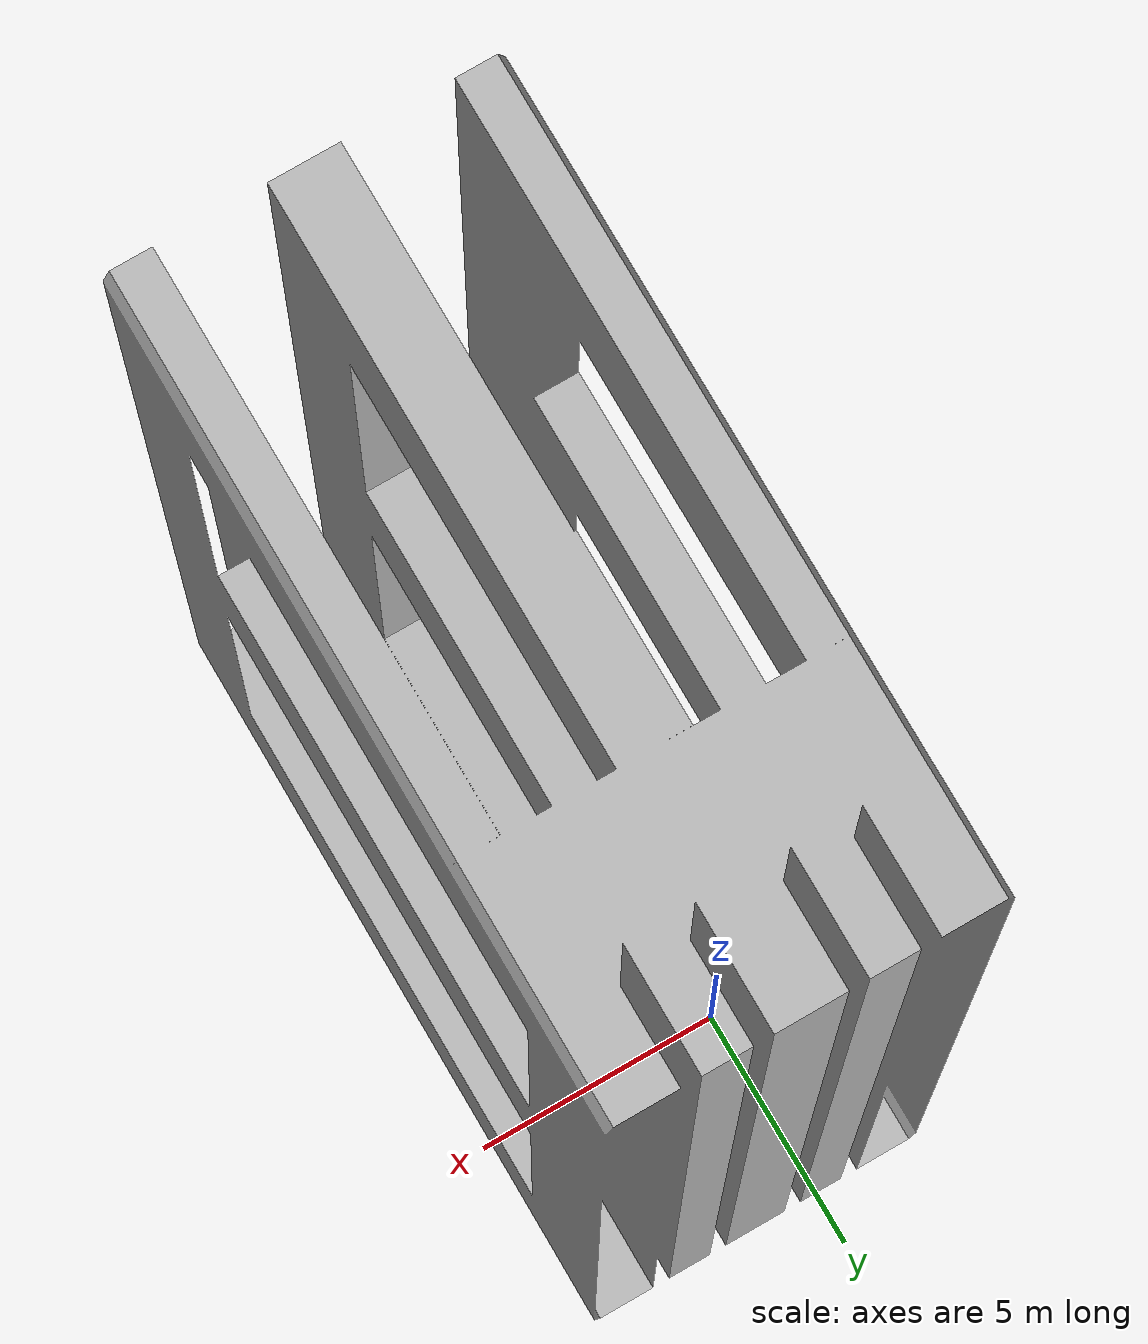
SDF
<?xml version="1.0" ?>
<sdf version="1.4">
	<model name="pallet22cm">
		<static>true</static>
		<link name="link">
			<pose>0 0 0.06 0 0 0</pose>
			<collision name="collision">
				<geometry>
					<mesh>
						<uri>model://pallet_benchmark/mesh/pallet.dae</uri>
						<scale>1.0 11.81 2.5</scale>
					</mesh>
				</geometry>

			</collision>
			<visual name="visual">
				<geometry>
					<mesh>
						<uri>model://pallet_benchmark/mesh/pallet.dae</uri>
						<scale>1.0 11.81 2.5</scale>
					</mesh>
				</geometry>
			</visual>
		</link>
	</model>
</sdf>
